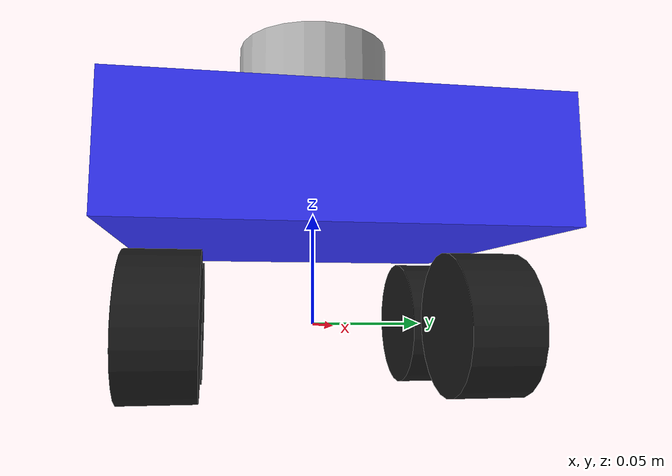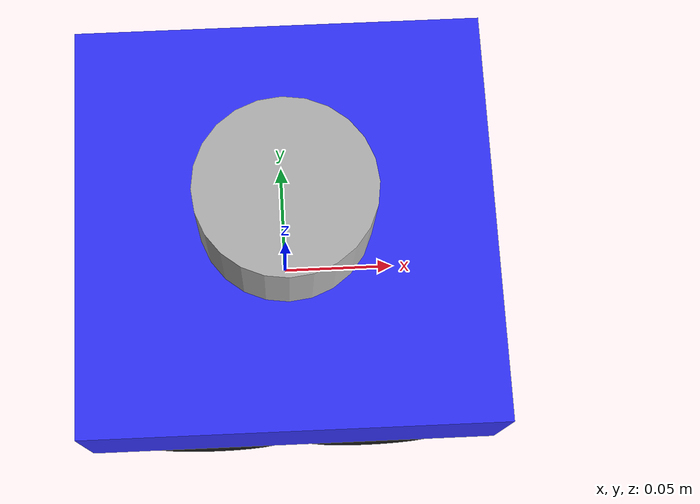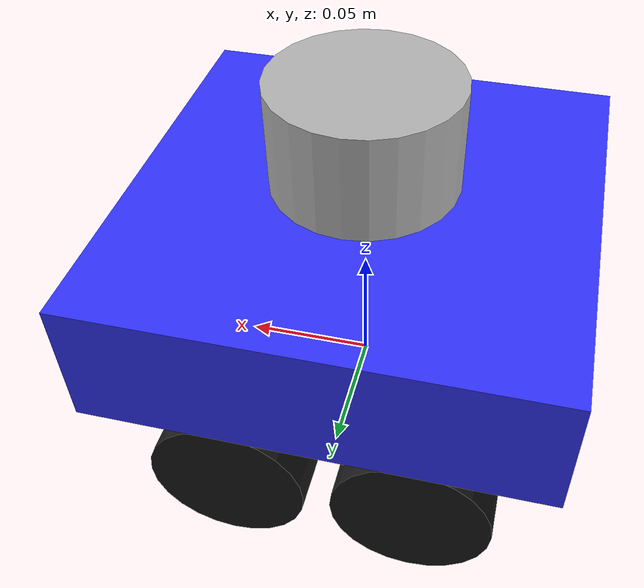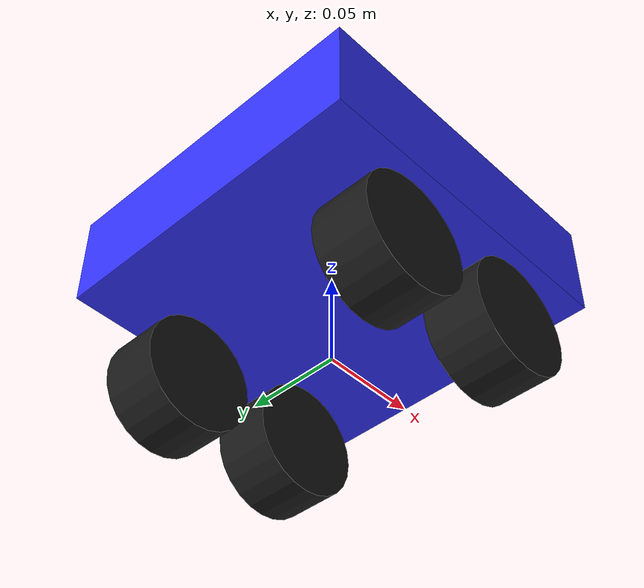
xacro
<?xml version="1.0"?>
<robot name="smorphi" xmlns:xacro="http://www.ros.org/wiki/xacro">

  <!-- ── Materials ──────────────────────────────────────────── -->
  <material name="blue">   <color rgba="0.2 0.2 1.0 1.0"/> </material>
  <material name="black">  <color rgba="0.1 0.1 0.1 1.0"/> </material>
  <material name="silver"> <color rgba="0.7 0.7 0.7 1.0"/> </material>
  <material name="white">  <color rgba="0.9 0.9 0.9 1.0"/> </material>

  <!-- ── Dimensions ─────────────────────────────────────────── -->
  <xacro:property name="base_size"      value="0.17"/>
  <xacro:property name="base_height"    value="0.05"/>
  <xacro:property name="wheel_radius"   value="0.03"/>
  <xacro:property name="wheel_length"   value="0.03"/>
  <xacro:property name="wheel_offset_x" value="0.035"/>
  <xacro:property name="wheel_offset_y" value="0.065"/>

  <link name="base_footprint"/>

  <joint name="base_joint" type="fixed">
    <parent link="base_footprint"/>
    <child  link="base_link"/>
    <origin xyz="0 0 0.06" rpy="0 0 0"/>
  </joint>

  <!-- ============================================================
       BASE LINK  —  robot body
  ============================================================ -->
  <link name="base_link">
    <visual>
      <origin xyz="0 0 0" rpy="0 0 0"/>
      <geometry>
        <box size="${base_size} ${base_size} ${base_height}"/>
      </geometry>
      <material name="blue"/>
    </visual>
    <collision>
      <origin xyz="0 0 0" rpy="0 0 0"/>
      <geometry>
        <box size="${base_size} ${base_size} ${base_height}"/>
      </geometry>
    </collision>
    <inertial>
      <origin xyz="0 0 0" rpy="0 0 0"/>
      <mass value="2.0"/>
      <!-- Inertia for uniform box: Ixx=Iyy=m(b²+c²)/12, Izz=m(a²+b²)/12 -->
      <inertia
        ixx="0.00583" ixy="0.0" ixz="0.0"
        iyy="0.00583" iyz="0.0"
        izz="0.01133"/>
    </inertial>
  </link>

  <xacro:macro name="wheel" params="prefix x_reflect y_reflect">

    <link name="${prefix}_wheel">
      <visual>
        <!-- Cylinder default axis is Z; rotate 90° around X to align with Y -->
        <origin xyz="0 0 0" rpy="${pi/2} 0 0"/>
        <geometry>
          <cylinder radius="${wheel_radius}" length="${wheel_length}"/>
        </geometry>
        <material name="black"/>
      </visual>
      <collision>
        <origin xyz="0 0 0" rpy="${pi/2} 0 0"/>
        <geometry>
          <cylinder radius="${wheel_radius}" length="${wheel_length}"/>
        </geometry>
      </collision>
      <inertial>
        <origin xyz="0 0 0" rpy="${pi/2} 0 0"/>
        <mass value="0.15"/>
        <!-- Solid cylinder: Ixx=Iyy=m(3r²+h²)/12, Izz=mr²/2 -->
        <inertia
          ixx="0.000038" ixy="0.0" ixz="0.0"
          iyy="0.000038" iyz="0.0"
          izz="0.000068"/>
      </inertial>
    </link>

    <joint name="${prefix}_wheel_joint" type="continuous">
      <parent link="base_link"/>
      <child  link="${prefix}_wheel"/>
      <origin
        xyz="${x_reflect * wheel_offset_x} ${y_reflect * wheel_offset_y} -0.06"
        rpy="0 0 0"/>
      <axis xyz="0 1 0"/>
      <dynamics damping="0.01" friction="0.1"/>
    </joint>

  </xacro:macro>

  <!-- Instantiate all 4 wheels -->
  <xacro:wheel prefix="front_left"  x_reflect="1"  y_reflect="1"/>
  <xacro:wheel prefix="front_right" x_reflect="1"  y_reflect="-1"/>
  <xacro:wheel prefix="rear_left"   x_reflect="-1" y_reflect="1"/>
  <xacro:wheel prefix="rear_right"  x_reflect="-1" y_reflect="-1"/>

  <link name="laser_link">
    <visual>
      <origin xyz="0 0 0" rpy="0 0 0"/>
      <geometry>
        <cylinder radius="0.035" length="0.04"/>
      </geometry>
      <material name="silver"/>
    </visual>
    <collision>
      <origin xyz="0 0 0" rpy="0 0 0"/>
      <geometry>
        <cylinder radius="0.035" length="0.04"/>
      </geometry>
    </collision>
    <inertial>
      <origin xyz="0 0 0" rpy="0 0 0"/>
      <mass value="0.17"/>
      <inertia
        ixx="0.0001" ixy="0.0" ixz="0.0"
        iyy="0.0001" iyz="0.0"
        izz="0.0001"/>
    </inertial>
  </link>

  <!-- base_link → laser_link  (fixed, lidar doesn't move) -->
  <joint name="laser_joint" type="fixed">
    <parent link="base_link"/>
    <child  link="laser_link"/>
    <!-- z = base_height/2 + 0.025 above top surface of body -->
    <origin xyz="0.0 0.0 0.05" rpy="0 0 0"/>
  </joint>

</robot>
